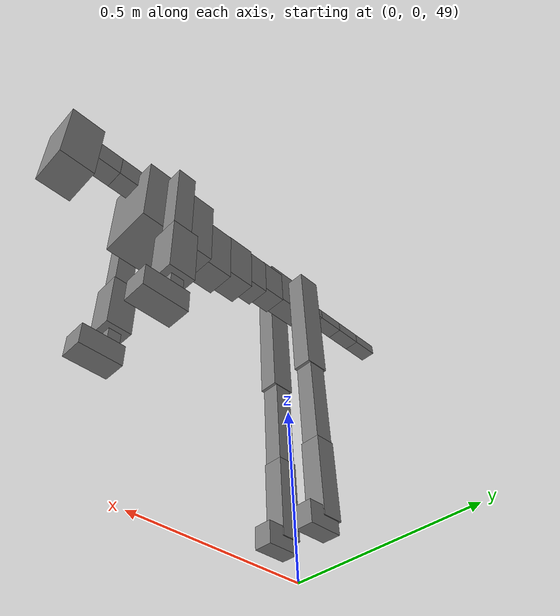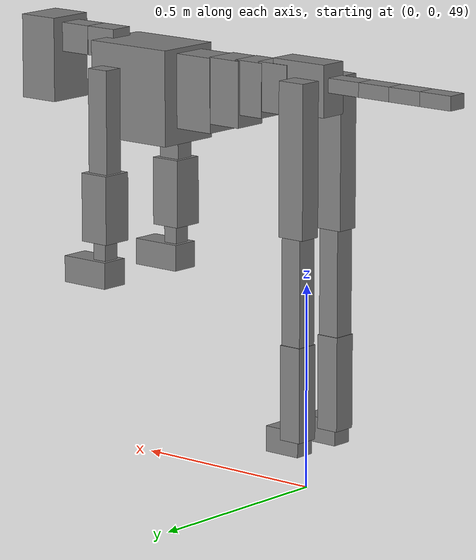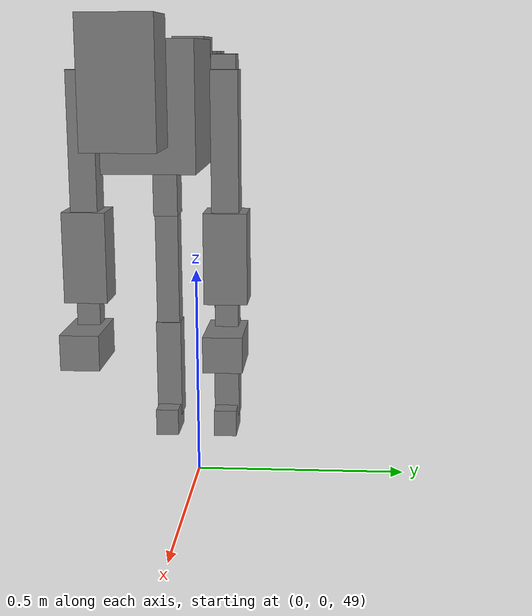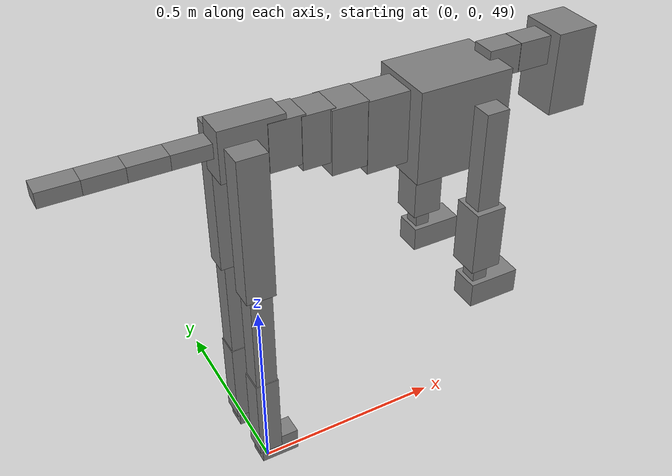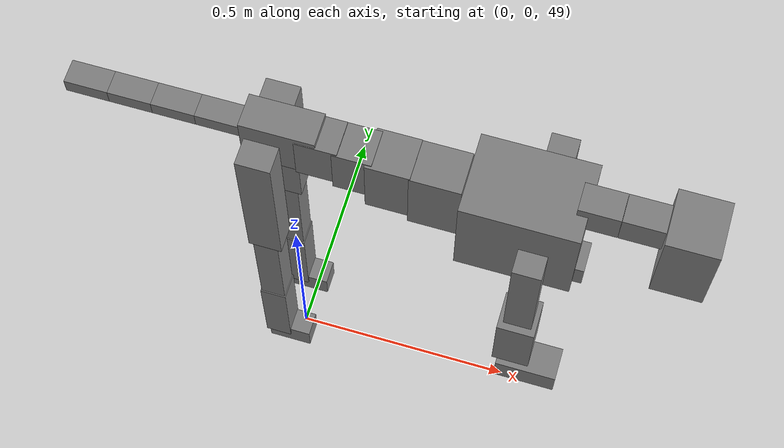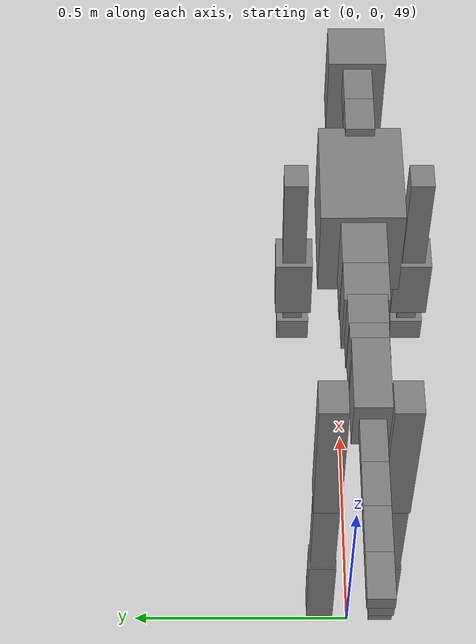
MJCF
<mujoco model="dog">

    <default>
        <joint armature="0.02" stiffness="1" damping="0.2" limited="true"/>
        <geom condim="3" friction="1 0.05 0.05" margin="0.01"/>
        <motor ctrllimited="true" ctrlrange="-1.0 1.0" forcelimited="true" gear="50"/>
    </default>

    <compiler inertiafromgeom="true" angle="radian"/>

    <option timestep="0.016" iterations="50" tolerance="1e-10" solver="Newton" jacobian="dense" cone="pyramidal"/>

    <size nconmax="20000" njmax="60000" nstack="5000000"/>
    <visual>
        <map force="0.1" zfar="30"/>
        <rgba haze="0.15 0.25 0.35 1"/>
        <quality shadowsize="2048"/>
        <global offwidth="800" offheight="800"/>
    </visual>

    <asset>
        <texture type="skybox" builtin="gradient" rgb1="0.3 0.5 0.7" rgb2="0 0 0" width="512" height="512"/>
        <texture name="texplane" type="2d" builtin="checker" rgb1=".2 .3 .4" rgb2=".1 0.15 0.2" width="512" height="512"
                 mark="cross" markrgb=".8 .8 .8"/>
        <texture name="texgeom" type="cube" builtin="flat" mark="cross" width="127" height="1278" rgb1="0.8 0.6 0.4"
                 rgb2="0.8 0.6 0.4" markrgb="1 1 1" random="0.01"/>

        <material name="matplane" reflectance="0.3" texture="texplane" texrepeat="1 1" texuniform="true"/>
        <material name="matgeom" texture="texgeom" texuniform="true" rgba="0.8 0.6 .4 1"/>
    </asset>

    <worldbody>
        <geom name="floor" pos="0 0 0" size="0 0 .25" type="plane" material="matplane" condim="3"/>

        <light directional="false" diffuse=".2 .2 .2" specular="0 0 0" pos="0 0 5" dir="0 0 -1" castshadow="false"/>
        <light mode="targetbodycom" target="torso" directional="false" diffuse=".8 .8 .8" specular="0.3 0.3 0.3"
               pos="0 0 4.0" dir="0 0 -1"/>

        <body name="root" pos="0 0 50">
            <freejoint name="root_1"/>
            <geom type="box" pos="0 0 -0.02" size="0.0774  0.0358  0.063" density="2030"/>

            <body name="spine1" pos="0.054 0 0">
                <joint name="spine1_y" axis="0 1 0" range="0 0.7" limited="true"/>
                <geom type="box" pos="0.02375 0 -0.03" size="0.04375  0.0375  0.05985" density="2030"/>

                <body name="spine2" pos="0.0612 0 0">
                    <joint name="spine2_y" axis="0 1 0" range="-0.15 0.15" limited="true"/>
                    <geom type="box" pos="0.03555  0  -0.04" size="0.04055  0.039  0.06615" density="2030"/>

                    <body name="spine3" pos="0.0730 0 0">
                        <joint name="spine3_y" axis="0 1 0" range="-0.15 0.15" limited="true"/>
                        <geom type="box" pos="0.03555  0  -0.057" size="0.04555  0.0445  0.081" density="2030"/>

                        <body name="spine4" pos="0.0780 0 0">
                            <joint name="spine4_y" axis="0 1 0" range="-0.15 0.15" limited="true"/>
                            <geom type="box" pos="0.05265  0  -0.07" size="0.05265  0.045  0.09135" density="2030"/>

                            <body name="torso" pos="0.1082 0 0">
                                <joint name="torso_y" axis="0 1 0" range="-0.15 0.15" limited="true"/>
                                <geom type="box" pos="0.11925  0  -0.085" size="0.11925  0.085  0.11745"
                                      density="2030"/>

                                <body name="neck1" pos="0.2160  0   0.0180">
                                    <joint name="neck1_y" axis="0 1 0" range="-1.2  -1" limited="true"/>
                                    <geom type="box" pos="0.0423  0  0" size="0.0423  0.03  0.036" density="2325"/>

                                    <body name="neck2" pos="0.0853  0  0">
                                        <joint name="neck2_y" axis="0 1 0" range="0.1  0" limited="true"/>
                                        <geom type="box" pos="0.0423  0  0" size="0.0423  0.03  0.036" density="2325"/>

                                        <body name="head" pos="0.0853  0  0">
                                            <joint name="head_y" axis="0 1 0" range="-0.3  -0.2" limited="true"/>
                                            <geom type="box" pos="0.0531  0  -0.055" size="0.0531  0.06  0.1044"
                                                  density="4030"/>

                                        </body>
                                    </body>
                                </body>

                                <body name="front_shoulder" pos="0.156  0   -0.0480">
                                    <joint name="front_shoulder_y" axis="0 1 0" range="-1 1.5" limited="true"/>
                                    <geom type="box" pos="0 0.13 -0.1149" size="0.0292  0.0249  0.1415" density="1158"/>
                                    <geom type="box" pos="0 -0.13 -0.1149" size="0.0292  0.0249  0.1415"
                                          density="1158"/>

                                    <body name="front_elbow" pos="0  0  -0.2297">
                                        <joint name="front_elbow_y" axis="0 1 0" range="-2 0" limited="true"/>
                                        <geom type="box" pos="0 0.13 -0.0847" size="0.0392  0.0401  0.0847"
                                              density="1081"/>
                                        <geom type="box" pos="0 -0.13 -0.0847" size="0.0392  0.0401  0.0847"
                                              density="1081"/>

                                        <body name="front_wrist" pos="0  0  -0.1695">
                                            <joint name="front_wrist_y" axis="0 1 0" range="-0.2 0" limited="true"/>
                                            <geom type="box" pos="0 0.13 -0.0303" size="0.0194  0.0215  0.0435"
                                                  density="1664"/>
                                            <geom type="box" pos="0 -0.13 -0.0303" size="0.0194  0.0215  0.0435"
                                                  density="1664"/>

                                            <body name="front_finger_end" pos="0  0  -0.0606">
                                                <joint name="front_finger_y" axis="0 1 0" range="-0.4 1"
                                                       limited="true"/>
                                                <geom type="box" pos="0.0359  0.13  -0.0179"
                                                      size="0.0658  0.0359  0.0329" density="1515"/>
                                                <geom type="box" pos="0.0359  -0.13  -0.0179"
                                                      size="0.0658  0.0359  0.0329" density="1515"/>

                                            </body>

                                        </body>
                                    </body>
                                </body>

                            </body>
                        </body>
                    </body>
                </body>
            </body>

            <body name="back_hip" pos="-0.03 0 -0.018">
                <joint name="back_hip_y" axis="0 1 0" range="-1.5 0.3" limited="true"/>
                <geom type="box" pos="0 0.07 -0.1640" size="0.0363  0.0285  0.1868" density="1154"/>
                <geom type="box" pos="0 -0.07 -0.1640" size="0.0363  0.0285  0.1868" density="1154"/>

                <body name="back_knee" pos="0  0  -0.3280">
                    <joint name="back_knee_y" axis="0 1 0" range="0 2.8" limited="true"/>
                    <geom type="box" pos="0 0.07 -0.1473" size="0.0273  0.0269  0.1628" density="1227"/>
                    <geom type="box" pos="0 -0.07 -0.1473" size="0.0273  0.0269  0.1628" density="1227"/>

                    <body name="back_ankle" pos="0  0  -0.2945">
                        <joint name="back_ankle_y" axis="0 1 0" range="-2.2 0" limited="true"/>
                        <geom type="box" pos="0 0.07 -0.1047" size="0.0295  0.0295  0.1160" density="1284"/>
                        <geom type="box" pos="0 -0.07 -0.1047" size="0.0295  0.0295  0.1160" density="1284"/>

                        <body name="back_toe_end" pos="0  0  -0.2094">
                            <joint name="back_toe_y" axis="0 1 0" range="-0.4 1" limited="true"/>
                            <geom type="box" pos="0.0266  0.07  -0.0163" size="0.0488  0.0266  0.0313" density="1515"/>
                            <geom type="box" pos="0.0266  -0.07  -0.0163" size="0.0488  0.0266  0.0313" density="1515"/>

                        </body>
                    </body>
                </body>
            </body>

            <body name="tail1" pos="-0.074 0 -0.006">
                <joint name="tail1_y" axis="0 1 0" range="-0.2 0.2" limited="true"/>
                <geom type="box" pos="-0.0536  0  0" size="0.045  0.025  0.0175" density="1587"/>

                <body name="tail2" pos="-0.09 0 0">
                    <joint name="tail2_y" axis="0 1 0" range="-0.2 0.2" limited="true"/>
                    <geom type="box" pos="-0.0536  0  0" size="0.045  0.025  0.0175" density="1587"/>

                    <body name="tail3" pos="-0.09 0 0">
                        <joint name="tail3_y" axis="0 1 0" range="-0.2 0.2" limited="true"/>
                        <geom type="box" pos="-0.0536  0  0" size="0.045  0.025  0.0175" density="1587"/>

                        <body name="tail4" pos="-0.09 0 0">
                            <joint name="tail4_y" axis="0 1 0" range="-0.2 0.2" limited="true"/>
                            <geom type="box" pos="-0.0536  0  0" size="0.045  0.025  0.0175" density="1587"/>

                        </body>
                    </body>
                </body>
            </body>
        </body>
    </worldbody>

    <actuator>
        <motor joint="spine1_y" forcerange="-150 150     "/>
        <motor joint="spine2_y" forcerange="-150 150     "/>
        <motor joint="spine3_y" forcerange="-150 150     "/>
        <motor joint="spine4_y" forcerange="-150 150     "/>
        <motor joint="torso_y" forcerange="-150 150     "/>
        <motor joint="neck1_y" forcerange="-100 100       "/>
        <motor joint="neck2_y" forcerange="-100 100       "/>
        <motor joint="head_y" forcerange="-150 150       "/>
        <motor joint="front_shoulder_y" forcerange="-161.85 104.42"/>
        <motor joint="front_elbow_y" forcerange="-195.67 195.75"/>
        <motor joint="front_wrist_y" forcerange="-101.21 70.89"/>
        <motor joint="front_finger_y" forcerange="-52.34 99.10"/>
        <motor joint="back_hip_y" forcerange="-285.92 293.46"/>
        <motor joint="back_knee_y" forcerange="-296.74 294.14"/>
        <motor joint="back_angle_y" forcerange="-173.16 199.14"/>
        <motor joint="back_toe_y" forcerange="-79.12 53.63"/>
        <motor joint="tail1_y" forcerange="-50 50     "/>
        <motor joint="tail2_y" forcerange="-50 50     "/>
        <motor joint="tail3_y" forcerange="-50 50     "/>
        <motor joint="tail4_y" forcerange="-50 50     "/>
    </actuator>
</mujoco>
